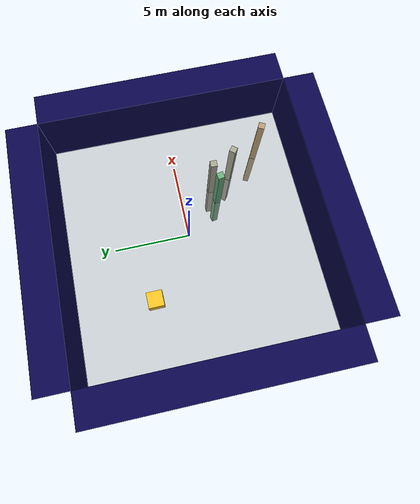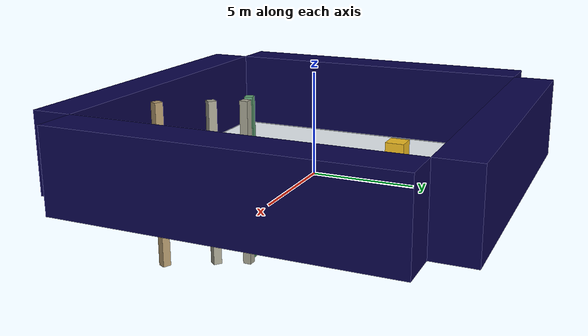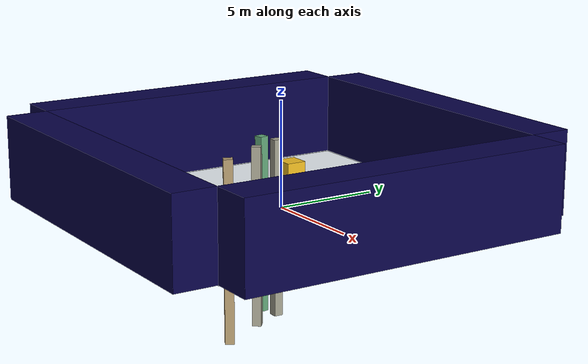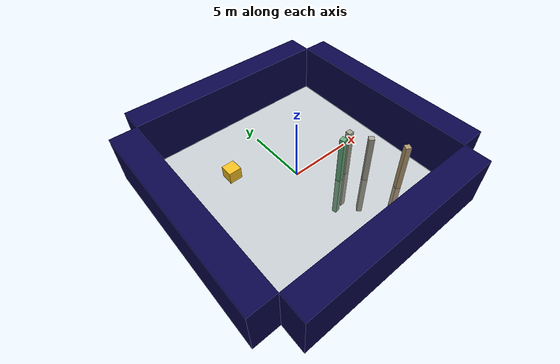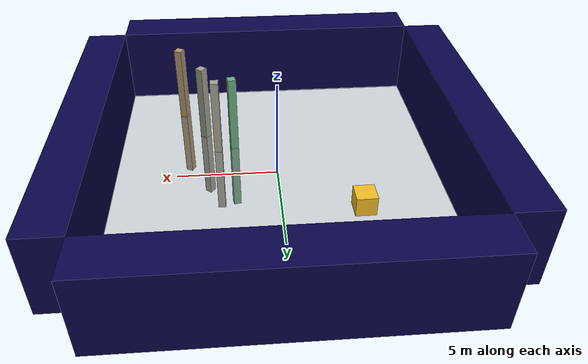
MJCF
<mujoco model="unnamed_model">
  <default>
    <default class="/" />
    <default class="border/" />
    <default class="border_1/" />
    <default class="border_2/" />
    <default class="border_3/" />
    <default class="light/" />
    <default class="agent/" />
    <default class="stone0/" />
    <default class="stone1/" />
    <default class="apple/" />
    <default class="apple_1/" />
  </default>
  <worldbody>
    <body name="border/">
      <body name="border/border" pos="0 9 2">
        <geom name="border/border_geom" class="border/" type="box" size="8.0 1.0 2.0" rgba="0.035 0.016 0.29 1.0" />
      </body>
    </body>
    <body name="border_1/">
      <body name="border_1/border" pos="0 -9 2">
        <geom name="border_1/border_geom" class="border_1/" type="box" size="8.0 1.0 2.0" rgba="0.035 0.016 0.29 1.0" />
      </body>
    </body>
    <body name="border_2/">
      <body name="border_2/border" pos="9 0 2">
        <geom name="border_2/border_geom" class="border_2/" type="box" size="1.0 8.0 2.0" rgba="0.035 0.016 0.29 1.0" />
      </body>
    </body>
    <body name="border_3/">
      <body name="border_3/border" pos="-9 0 2">
        <geom name="border_3/border_geom" class="border_3/" type="box" size="1.0 8.0 2.0" rgba="0.035 0.016 0.29 1.0" />
      </body>
    </body>
    <body name="light/">
      <body name="light/light" pos="0 0 15">
        <geom name="light/light_geom" class="light/" size="0.5" rgba="1.0 1.0 1.0 0.0" />
        <light name="light//unnamed_light_0" class="light/" />
      </body>
    </body>
    <body euler="0 0 270.57031960353726" name="agent/" pos="-3.8102499999999999 2.9864999999999995 0.5">
      <joint name="agent/boxagent_freeJoint/" class="/" type="free" />
      <body name="agent/agent" pos="0 0 0" euler="0 0 0">
        <geom name="agent/boxagent_geom" class="agent/" type="box" size="0.5 0.5 0.5" rgba="0.949 0.7451 0.1333 1.0" euler="0 0 0" />
        <camera name="agent/boxagent_camera" class="agent/" pos="0 -0.90000000000000002 0" euler="90 0 0" />
      </body>
    </body>
    <body name="stone0/">
      <body name="stone0/stone0" pos="2.12425 -2.3885000000000005 0.10000000000000001" euler="0 0 -169.58448744745954">
        <geom name="stone0/stone_geom" class="stone0/" type="box" size="0.2 0.2 4.0" rgba="0.396078431372549 0.6705882352941176 0.48627450980392156 1.0" />
      </body>
    </body>
    <body name="stone1/">
      <body name="stone1/stone1" pos="3.6364000000000001 -3.5638000000000005 0.10000000000000001" euler="0 0 140.51213841275285">
        <geom name="stone1/stone_geom" class="stone1/" type="box" size="0.2 0.2 4.0" rgba="0.6470588235294118 0.6392156862745098 0.5686274509803921 1.0" />
      </body>
    </body>
    <body name="apple/">
      <body name="apple/apple" pos="4.8572499999999996 -5.6798000000000002 0.10000000000000001" euler="0 0 153.18332842840607">
        <geom name="apple/apple_geom" class="apple/" type="box" size="0.2 0.2 4.0" rgba="0.6980392156862745 0.6 0.43137254901960786 1.0" />
      </body>
    </body>
    <body name="apple_1/">
      <body name="apple_1/apple" pos="2.96495 -2.1547000000000001 0.10000000000000001" euler="0 0 -91.141636758127149">
        <geom name="apple_1/apple_geom" class="apple_1/" type="box" size="0.2 0.2 4.0" rgba="0.6470588235294118 0.6392156862745098 0.5686274509803921 1.0" />
      </body>
    </body>
    <geom name="base_plane" class="/" type="plane" size="8 8 0.10000000000000001" />
  </worldbody>
</mujoco>
